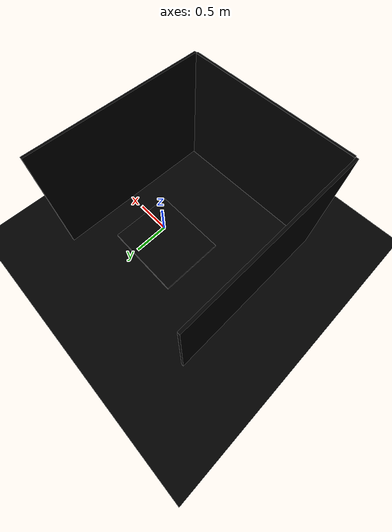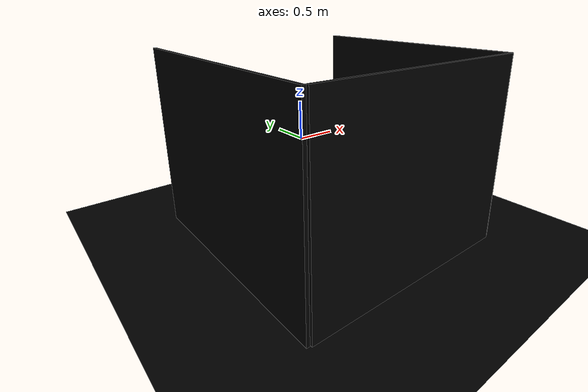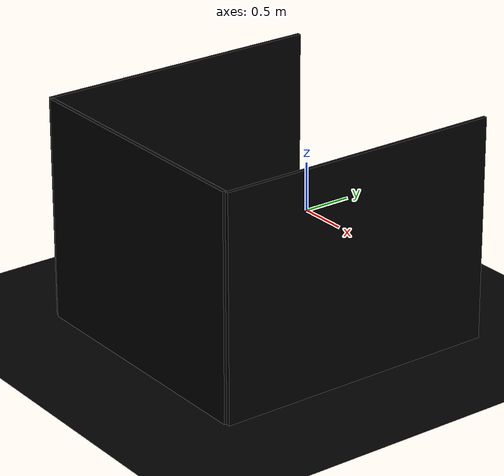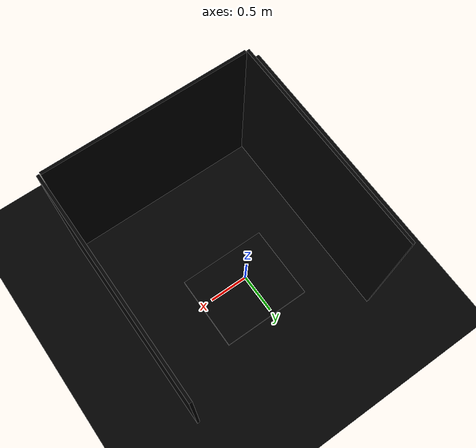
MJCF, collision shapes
<mujoco model="yam_workbench">
  <compiler angle="radian" meshdir="assets/" texturedir="assets/"/>

  <option gravity="0 0 -9.81" timestep="0.0005" integrator="implicitfast"
          solver="Newton" iterations="30" cone="elliptic" noslip_iterations="10"/>

  <statistic center="0 0 -0.3" extent="2.0"/>

  <visual>
    <headlight diffuse="0.6 0.6 0.6" ambient="0.3 0.3 0.3" specular="0 0 0"/>
    <rgba haze="0.15 0.25 0.35 1"/>
    <global azimuth="150" elevation="-20"/>
  </visual>

  <asset>
    <!-- Workbench visual mesh (UV-mapped, textured from splat colors) -->
    <mesh name="workbench_visual" file="workbench_visual.obj"/>

    <!-- Workbench texture baked from Gaussian splat colors -->
    <texture name="workbench_tex" type="2d" file="workbench_visual.png"/>
    <material name="workbench_mat" texture="workbench_tex"/>

    <!-- Textures -->
    <texture type="skybox" builtin="gradient" rgb1="0.3 0.5 0.7" rgb2="0 0 0"
      width="512" height="3072"/>
  </asset>

  <worldbody>
    <light pos="0 0 1.5" dir="0 0 -1" directional="true"/>
    <light pos="1 1 0.5" dir="-0.5 -0.5 -1" diffuse="0.4 0.4 0.4"/>

    <!-- Workbench scene (static) -->
    <body name="workbench" pos="0 0 0">
      <!-- Visual mesh (no collision) — textured from Gaussian splat -->
      <geom name="workbench_visual" type="mesh" mesh="workbench_visual"
            material="workbench_mat" contype="0" conaffinity="0" group="1"/>

      <!-- Collision: table surface -->
      <geom name="table_top" type="box" size="0.6 0.5 0.02"
            pos="0 0 -0.43" rgba="0 0 0 0" group="3"
            contype="1" conaffinity="1" friction="1 0.005 0.0001"/>

      <!-- Collision: floor -->
      <geom name="floor" type="plane" size="3 5 0.01"
            pos="0 0 -1.10" rgba="0 0 0 0" group="3"
            contype="1" conaffinity="1"/>

      <!-- Collision: back wall -->
      <geom name="back_wall" type="box" size="1.4 0.02 1.2"
            pos="0 -2.0 0" rgba="0 0 0 0" group="3"
            contype="1" conaffinity="1"/>

      <!-- Collision: side walls -->
      <geom name="left_wall" type="box" size="0.02 1.5 1.2"
            pos="-1.43 -0.5 0" rgba="0 0 0 0" group="3"
            contype="1" conaffinity="1"/>
      <geom name="right_wall" type="box" size="0.02 1.5 1.2"
            pos="1.43 -0.5 0" rgba="0 0 0 0" group="3"
            contype="1" conaffinity="1"/>
    </body>
  </worldbody>
</mujoco>
